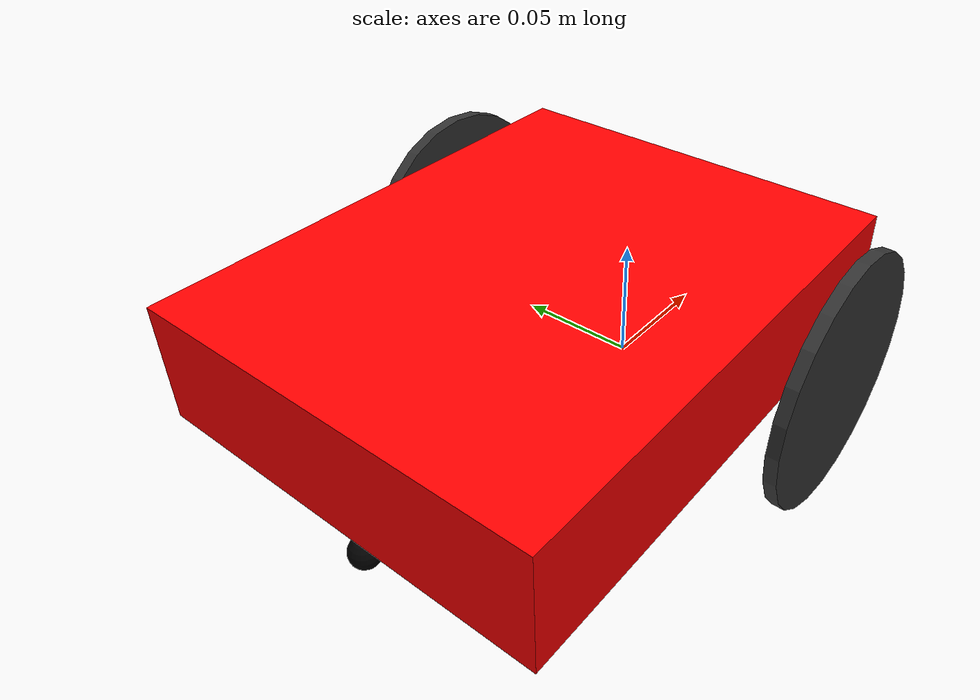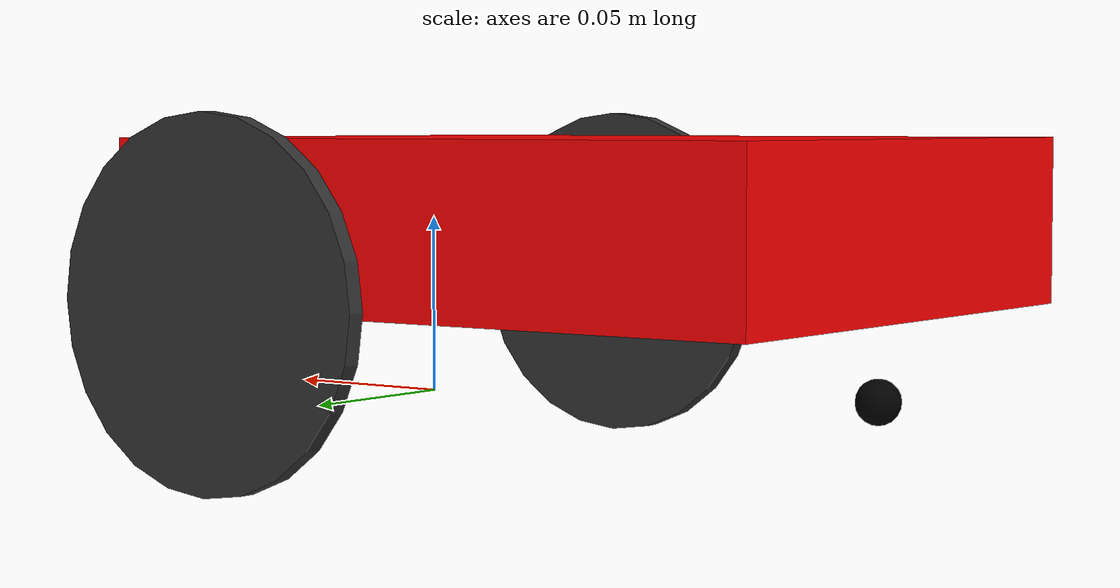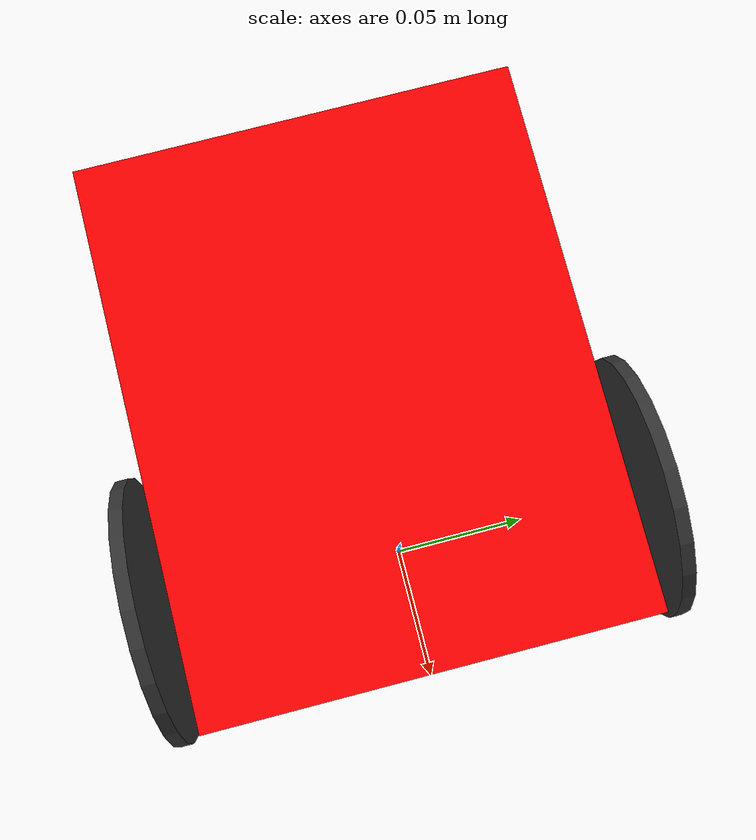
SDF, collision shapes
<?xml version='1.0'?>
<sdf version='1.4'>
  <model name='puzzlebot1' canonical_link='chassis'>

    <!-- Chassis -->
    <link name='chassis'>
      <pose relative_to='__model__'>0 0 0.05 0 0 0</pose>

      <inertial>
        <mass>1.0</mass>
        <pose>-0.05 0 -0.01 0 0 0</pose>
        <inertia>
          <ixx>0.004</ixx>
          <iyy>0.004</iyy>
          <izz>0.004</izz>
          <ixy>0</ixy>
          <ixz>0</ixz>
          <iyz>0</iyz>
        </inertia>
      </inertial>

      <visual name='visual'>
        <geometry>
          <mesh>
            <uri>file:///home/idmx/ros2_ws_2/src/motor_control/puzzlebot/meshes/chassis1.dae</uri>
          </mesh>
        </geometry>
        <!-- Material para el chasis (se mantiene rojo, pero puedes cambiarlo) -->
        <material>
          <ambient>1 0 0 1</ambient>
          <diffuse>1 0 0 1</diffuse>
          <specular>0.5 0.5 0.5 1</specular>
        </material>
      </visual>

      <collision name='collision'>
        <pose>-0.055 0 0 0 0 0</pose>
        <geometry>
          <box>
            <size>0.2 0.16 0.046</size>
          </box>
        </geometry>
      </collision>

    </link>

    <!-- Right wheel -->
    <link name='right_wheel'>
      <!-- Se baja la rueda en z para que toque el suelo -->
      <pose relative_to="chassis">0.0 -0.095 -0.02 0 0 3.1415</pose>

      <inertial>
        <mass>0.05</mass>
        <inertia>
          <ixx>0.002</ixx>
          <iyy>0.002</iyy>
          <izz>0.002</izz>
          <ixy>0</ixy>
          <ixz>0</ixz>
          <iyz>0</iyz>
        </inertia>
      </inertial>

      <!-- Visual: rueda en cilindro aplanado en gris oscuro -->
      <visual name='visual'>
      	<pose>0 0 0 -1.5708 0 0</pose>
        <geometry>
          <cylinder>
            <radius>0.05</radius>
            <length>0.005</length>
          </cylinder>
        </geometry>
        <material>
          <ambient>0.2 0.2 0.2 1</ambient>
          <diffuse>0.2 0.2 0.2 1</diffuse>
          <specular>0.1 0.1 0.1 1</specular>
        </material>
      </visual>

      <collision name='collision'>
        <pose>0 -0.0025 0 1.5707 0 0</pose>
        <geometry>
          <cylinder>
            <radius>0.05</radius>
            <length>0.005</length>
          </cylinder>
        </geometry>
        <surface>
          <friction>
            <ode>
              <mu>1.0</mu>
              <mu2>1.0</mu2>
            </ode>
          </friction>
        </surface>
      </collision>

    </link>

    <!-- Left wheel -->
    <link name='left_wheel'>
      <!-- Se baja la rueda en z para que toque el suelo -->
      <pose relative_to="chassis">0.0 0.095 -0.02 0 0 0</pose>

      <inertial>
        <mass>0.05</mass>
        <inertia>
          <ixx>0.002</ixx>
          <iyy>0.002</iyy>
          <izz>0.002</izz>
          <ixy>0</ixy>
          <ixz>0</ixz>
          <iyz>0</iyz>
        </inertia>
      </inertial>

      <!-- Visual: rueda en cilindro aplanado en gris oscuro -->
      <visual name='visual'>
      	<pose>0 0 0 -1.5708 0 0</pose>
        <geometry>
          <cylinder>
            <radius>0.05</radius>
            <length>0.005</length>
          </cylinder>
        </geometry>
        <material>
          <ambient>0.2 0.2 0.2 1</ambient>
          <diffuse>0.2 0.2 0.2 1</diffuse>
          <specular>0.1 0.1 0.1 1</specular>
        </material>
      </visual>

      <collision name='collision'>
        <pose>0 -0.0025 0 1.5707 0 0</pose>
        <geometry>
          <cylinder>
            <radius>0.05</radius>
            <length>0.005</length>
          </cylinder>
        </geometry>
        <surface>
          <friction>
            <ode>
              <mu>1.0</mu>
              <mu2>1.0</mu2>
            </ode>
          </friction>
        </surface>
      </collision>

    </link>

    <!-- Arbitrary frame para el caster -->
    <frame name="caster_frame" attached_to='chassis'>
      <pose>-0.145 0 -0.044 0 0 0</pose>
    </frame>

    <!-- Caster wheel -->
    <link name='caster'>
      <pose relative_to='caster_frame'/>

      <inertial>
        <mass>0.01</mass>
        <inertia>
          <ixx>0.0000025</ixx>
          <iyy>0.0000025</iyy>
          <izz>0.0000025</izz>
          <ixy>0</ixy>
          <ixz>0</ixz>
          <iyz>0</iyz>
        </inertia>
      </inertial>

      <visual name='visual'>
        <geometry>
          <sphere>
            <radius>0.006</radius>
          </sphere>
        </geometry>
        <material>
          <!-- Caster en negro -->
          <ambient>0 0 0 1</ambient>
          <diffuse>0 0 0 1</diffuse>
          <specular>0.1 0.1 0.1 1</specular>
        </material>
      </visual>

      <collision name='collision'>
        <geometry>
          <sphere>
            <radius>0.006</radius>
          </sphere>
        </geometry>
      </collision>
    </link>

    <!-- Joint: Left Wheel -->
    <joint name='left_wheel_joint' type='revolute'>
      <pose relative_to='left_wheel'/>
      <parent>chassis</parent>
      <child>left_wheel</child>
      <axis>
        <xyz expressed_in='__model__'>0 1 0</xyz>
        <limit>
          <lower>-1.79769e+308</lower>
          <upper>1.79769e+308</upper>
          <effort>1</effort>
        </limit>
        <dynamics>
          <friction>0.1</friction>
        </dynamics>
      </axis>
    </joint>

    <!-- Joint: Right Wheel -->
    <joint name='right_wheel_joint' type='revolute'>
      <pose relative_to='right_wheel'/>
      <parent>chassis</parent>
      <child>right_wheel</child>
      <axis>
        <xyz expressed_in='__model__'>0 1 0</xyz>
        <limit>
          <lower>-1.79769e+308</lower>
          <upper>1.79769e+308</upper>
          <effort>1</effort>
        </limit>
        <dynamics>
          <friction>0.1</friction>
        </dynamics>
      </axis>
    </joint>

    <!-- Joint: Caster Wheel -->
    <joint name='caster_wheel' type='ball'>
      <parent>chassis</parent>
      <child>caster</child>
    </joint>

    <!-- Plugin de Differential Drive de Gazebo ROS -->
    <plugin name="gazebo_ros_diff_drive" filename="libgazebo_ros_diff_drive.so">
      <ros>
        <namespace>/puzzlebot</namespace>
        <argument>cmd_vel</argument>
      </ros>
      <update_rate>100</update_rate>
      <wheel_separation>0.19</wheel_separation>
      <wheel_diameter>0.1</wheel_diameter>
      <torque>5</torque>
      <left_joint>left_wheel_joint</left_joint>
      <right_joint>right_wheel_joint</right_joint>
      <command_topic>cmd_vel</command_topic>
      <odometry_topic>odom</odometry_topic>
      <odometry_frame>odom</odometry_frame>
      <robot_base_frame>chassis</robot_base_frame>
    </plugin>

  </model>
</sdf>
